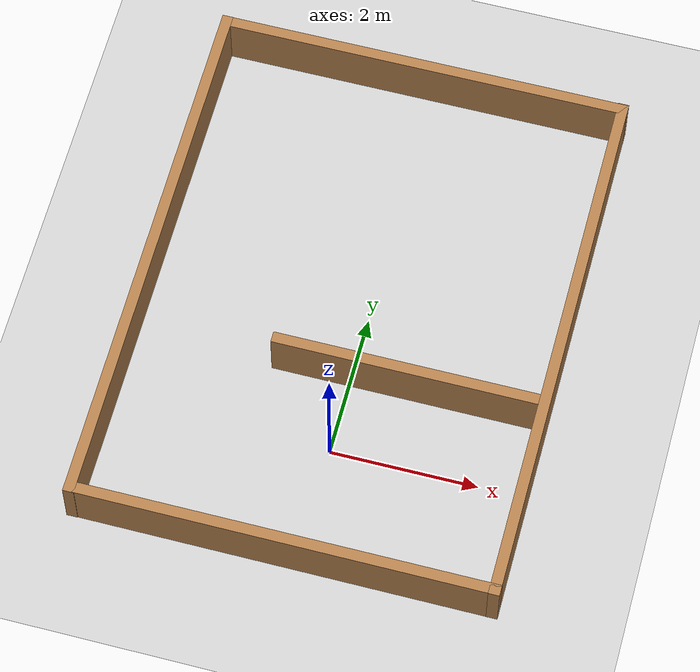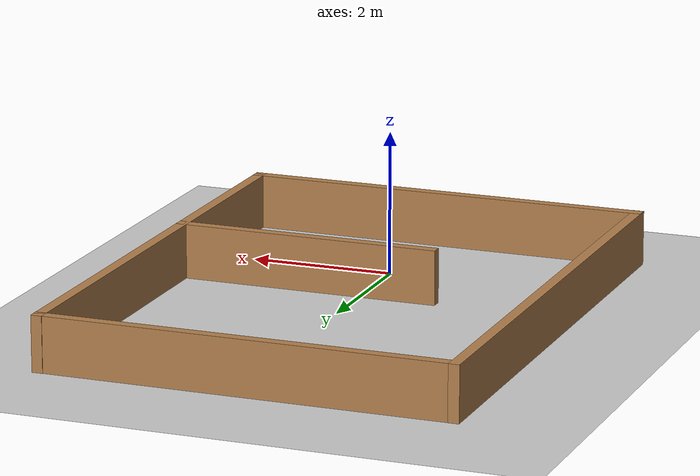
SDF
<sdf version="1.6">
 <world name="default">
  <light name="sun" type="directional">
   <pose>0 0 10 0 -0 0</pose>
   <diffuse>0.8 0.8 0.8 1</diffuse>
   <specular>0.2 0.2 0.2 1</specular>
   <attenuation>
    <range>1000</range>
    <constant>0.9</constant>
    <linear>0.01</linear>
    <quadratic>0.001</quadratic>
   </attenuation>
   <direction>0.5 0.1 -0.9</direction>
  </light>
  <scene><ambient>0.4 0.4 0.4 1</ambient><background>0.7 0.7 0.7 1</background><shadows>1</shadows></scene>
  <physics name="default_physics" default="0" type="ode">
   <max_step_size>0.01</max_step_size>
   <real_time_factor>1</real_time_factor>
   <real_time_update_rate>100</real_time_update_rate>
  </physics>
  <gravity>0 0 -9.8</gravity>
  <magnetic_field>6e-06 2.3e-05 -4.2e-05</magnetic_field>
  <atmosphere type="adiabatic"/>
  <spherical_coordinates>
   <surface_model>EARTH_WGS84</surface_model>
   <latitude_deg>0</latitude_deg>
   <longitude_deg>0</longitude_deg>
   <elevation>0</elevation>
   <heading_deg>0</heading_deg>
  </spherical_coordinates>
  <model name="ground_plane">
   <static>1</static>
   <link name="link">
    <collision name="collision">
     <geometry><plane><normal>0 0 1</normal><size>100 100</size></plane></geometry>
     <surface><friction><ode><mu>100</mu><mu2>50</mu2></ode></friction></surface>
    </collision>
    <visual name="visual">
     <cast_shadows>0</cast_shadows>
     <geometry><plane><normal>0 0 1</normal><size>100 100</size></plane></geometry>
     <material>
      <script><uri>file://media/materials/scripts/gazebo.material</uri><name>Gazebo/Grey</name></script>
     </material>
    </visual>
   </link>
   <pose>3.63562 1.30612 0 0 -0 0</pose>
  </model>
  <model name="arn_env1">
   <link name="Wall_10">
    <pose>0.82386 -0.803958 -1 0 -0 0</pose>
    <inertial>
     <mass>1</mass>
     <inertia><ixx>1</ixx><ixy>0</ixy><ixz>0</ixz><iyy>1</iyy><iyz>0</iyz><izz>1</izz></inertia>
    </inertial>
    <visual name="Wall_10_Visual">
     <pose>0 0 1.25 0 -0 0</pose>
     <geometry><box><size>3.75 0.15 1</size></box></geometry>
     <material>
      <script><uri>file://media/materials/scripts/gazebo.material</uri><name>Gazebo/Wood</name></script>
      <ambient>1 1 1 1</ambient>
      <shader type="pixel"><normal_map>__default__</normal_map></shader>
      <diffuse>0.7 0.7 0.7 1</diffuse>
      <specular>0.01 0.01 0.01 1</specular>
      <emissive>0 0 0 1</emissive>
     </material>
     <meta><layer>0</layer></meta>
    </visual>
    <collision name="Wall_10_Collision">
     <pose>0 0 1.25 0 -0 0</pose>
     <geometry><box><size>1.75 0.15 2.5</size></box></geometry>
     <surface>
      <friction>
       <ode><mu>1</mu><mu2>1</mu2><fdir1>0 0 0</fdir1><slip1>0</slip1><slip2>0</slip2></ode>
       <torsional>
        <coefficient>1</coefficient>
        <patch_radius>0</patch_radius>
        <surface_radius>0</surface_radius>
        <use_patch_radius>1</use_patch_radius>
        <ode><slip>0</slip></ode>
       </torsional>
      </friction>
      <bounce><restitution_coefficient>0</restitution_coefficient><threshold>1e+06</threshold></bounce>
      <contact>
       <collide_without_contact>0</collide_without_contact>
       <collide_without_contact_bitmask>1</collide_without_contact_bitmask>
       <collide_bitmask>1</collide_bitmask>
       <ode>
        <soft_cfm>0</soft_cfm>
        <soft_erp>0.2</soft_erp>
        <kp>1e+13</kp>
        <kd>1</kd>
        <max_vel>0.01</max_vel>
        <min_depth>0</min_depth>
       </ode>
       <bullet>
        <split_impulse>1</split_impulse>
        <split_impulse_penetration_threshold>-0.01</split_impulse_penetration_threshold>
        <soft_cfm>0</soft_cfm>
        <soft_erp>0.2</soft_erp>
        <kp>1e+13</kp>
        <kd>1</kd>
       </bullet>
      </contact>
     </surface>
    </collision>
   </link>
   <link name="Wall_4">
    <pose>-0.174556 -3.54686 -1 0 -0 0</pose>
    <inertial>
     <mass>1</mass>
     <inertia><ixx>1</ixx><ixy>0</ixy><ixz>0</ixz><iyy>1</iyy><iyz>0</iyz><izz>1</izz></inertia>
    </inertial>
    <visual name="Wall_4_Visual">
     <pose>0 0 1.25 0 -0 0</pose>
     <geometry><box><size>5.75 0.15 1</size></box></geometry>
     <material>
      <script><uri>file://media/materials/scripts/gazebo.material</uri><name>Gazebo/Wood</name></script>
      <ambient>1 1 1 1</ambient>
      <shader type="pixel"><normal_map>__default__</normal_map></shader>
      <diffuse>0.7 0.7 0.7 1</diffuse>
      <specular>0.01 0.01 0.01 1</specular>
      <emissive>0 0 0 1</emissive>
     </material>
     <meta><layer>0</layer></meta>
    </visual>
    <collision name="Wall_4_Collision">
     <pose>0 0 1.25 0 -0 0</pose>
     <geometry><box><size>5.75 0.15 2.5</size></box></geometry>
     <surface>
      <friction>
       <ode><mu>1</mu><mu2>1</mu2><fdir1>0 0 0</fdir1><slip1>0</slip1><slip2>0</slip2></ode>
       <torsional>
        <coefficient>1</coefficient>
        <patch_radius>0</patch_radius>
        <surface_radius>0</surface_radius>
        <use_patch_radius>1</use_patch_radius>
        <ode><slip>0</slip></ode>
       </torsional>
      </friction>
      <bounce><restitution_coefficient>0</restitution_coefficient><threshold>1e+06</threshold></bounce>
      <contact>
       <collide_without_contact>0</collide_without_contact>
       <collide_without_contact_bitmask>1</collide_without_contact_bitmask>
       <collide_bitmask>1</collide_bitmask>
       <ode>
        <soft_cfm>0</soft_cfm>
        <soft_erp>0.2</soft_erp>
        <kp>1e+13</kp>
        <kd>1</kd>
        <max_vel>0.01</max_vel>
        <min_depth>0</min_depth>
       </ode>
       <bullet>
        <split_impulse>1</split_impulse>
        <split_impulse_penetration_threshold>-0.01</split_impulse_penetration_threshold>
        <soft_cfm>0</soft_cfm>
        <soft_erp>0.2</soft_erp>
        <kp>1e+13</kp>
        <kd>1</kd>
       </bullet>
      </contact>
     </surface>
    </collision>
   </link>
   <link name="Wall_4_clone">
    <pose>-0.172112 3.77995 -1 0 -0 0</pose>
    <inertial>
     <mass>1</mass>
     <inertia><ixx>1</ixx><ixy>0</ixy><ixz>0</ixz><iyy>1</iyy><iyz>0</iyz><izz>1</izz></inertia>
    </inertial>
    <visual name="Wall_4_Visual">
     <pose>0 0 1.25 0 -0 0</pose>
     <geometry><box><size>5.75 0.15 1</size></box></geometry>
     <material>
      <script><uri>file://media/materials/scripts/gazebo.material</uri><name>Gazebo/Wood</name></script>
      <ambient>1 1 1 1</ambient>
      <shader type="pixel"><normal_map>__default__</normal_map></shader>
      <diffuse>0.7 0.7 0.7 1</diffuse>
      <specular>0.01 0.01 0.01 1</specular>
      <emissive>0 0 0 1</emissive>
     </material>
     <meta><layer>0</layer></meta>
    </visual>
    <collision name="Wall_4_Collision">
     <pose>0 0 1.25 0 -0 0</pose>
     <geometry><box><size>5.75 0.15 2.5</size></box></geometry>
     <surface>
      <friction>
       <ode><mu>1</mu><mu2>1</mu2><fdir1>0 0 0</fdir1><slip1>0</slip1><slip2>0</slip2></ode>
       <torsional>
        <coefficient>1</coefficient>
        <patch_radius>0</patch_radius>
        <surface_radius>0</surface_radius>
        <use_patch_radius>1</use_patch_radius>
        <ode><slip>0</slip></ode>
       </torsional>
      </friction>
      <bounce><restitution_coefficient>0</restitution_coefficient><threshold>1e+06</threshold></bounce>
      <contact>
       <collide_without_contact>0</collide_without_contact>
       <collide_without_contact_bitmask>1</collide_without_contact_bitmask>
       <collide_bitmask>1</collide_bitmask>
       <ode>
        <soft_cfm>0</soft_cfm>
        <soft_erp>0.2</soft_erp>
        <kp>1e+13</kp>
        <kd>1</kd>
        <max_vel>0.01</max_vel>
        <min_depth>0</min_depth>
       </ode>
       <bullet>
        <split_impulse>1</split_impulse>
        <split_impulse_penetration_threshold>-0.01</split_impulse_penetration_threshold>
        <soft_cfm>0</soft_cfm>
        <soft_erp>0.2</soft_erp>
        <kp>1e+13</kp>
        <kd>1</kd>
       </bullet>
      </contact>
     </surface>
    </collision>
   </link>
   <link name="Wall_6">
    <pose>-2.97739 0.11496 -1 0 -0 1.57045</pose>
    <inertial>
     <mass>1</mass>
     <inertia><ixx>1</ixx><ixy>0</ixy><ixz>0</ixz><iyy>1</iyy><iyz>0</iyz><izz>1</izz></inertia>
    </inertial>
    <visual name="Wall_6_Visual">
     <pose>0 0 1.25 0 -0 0</pose>
     <geometry><box><size>7.48534 0.15 1</size></box></geometry>
     <material>
      <script><uri>file://media/materials/scripts/gazebo.material</uri><name>Gazebo/Wood</name></script>
      <ambient>1 1 1 1</ambient>
      <shader type="pixel"><normal_map>__default__</normal_map></shader>
      <diffuse>0.7 0.7 0.7 1</diffuse>
      <specular>0.01 0.01 0.01 1</specular>
      <emissive>0 0 0 1</emissive>
     </material>
     <meta><layer>0</layer></meta>
    </visual>
    <collision name="Wall_6_Collision">
     <pose>0 0 1.25 0 -0 0</pose>
     <geometry><box><size>7.48534 0.15 2.5</size></box></geometry>
     <surface>
      <friction>
       <ode><mu>1</mu><mu2>1</mu2><fdir1>0 0 0</fdir1><slip1>0</slip1><slip2>0</slip2></ode>
       <torsional>
        <coefficient>1</coefficient>
        <patch_radius>0</patch_radius>
        <surface_radius>0</surface_radius>
        <use_patch_radius>1</use_patch_radius>
        <ode><slip>0</slip></ode>
       </torsional>
      </friction>
      <bounce><restitution_coefficient>0</restitution_coefficient><threshold>1e+06</threshold></bounce>
      <contact>
       <collide_without_contact>0</collide_without_contact>
       <collide_without_contact_bitmask>1</collide_without_contact_bitmask>
       <collide_bitmask>1</collide_bitmask>
       <ode>
        <soft_cfm>0</soft_cfm>
        <soft_erp>0.2</soft_erp>
        <kp>1e+13</kp>
        <kd>1</kd>
        <max_vel>0.01</max_vel>
        <min_depth>0</min_depth>
       </ode>
       <bullet>
        <split_impulse>1</split_impulse>
        <split_impulse_penetration_threshold>-0.01</split_impulse_penetration_threshold>
        <soft_cfm>0</soft_cfm>
        <soft_erp>0.2</soft_erp>
        <kp>1e+13</kp>
        <kd>1</kd>
       </bullet>
      </contact>
     </surface>
    </collision>
   </link>
   <link name="Wall_6_clone">
    <pose>2.62604 0.119071 -1 0 -0 1.57045</pose>
    <inertial>
     <mass>1</mass>
     <inertia><ixx>1</ixx><ixy>0</ixy><ixz>0</ixz><iyy>1</iyy><iyz>0</iyz><izz>1</izz></inertia>
    </inertial>
    <visual name="Wall_6_Visual">
     <pose>0 0 1.25 0 -0 0</pose>
     <geometry><box><size>7.48534 0.15 1</size></box></geometry>
     <material>
      <script><uri>file://media/materials/scripts/gazebo.material</uri><name>Gazebo/Wood</name></script>
      <ambient>1 1 1 1</ambient>
      <shader type="pixel"><normal_map>__default__</normal_map></shader>
      <diffuse>0.7 0.7 0.7 1</diffuse>
      <specular>0.01 0.01 0.01 1</specular>
      <emissive>0 0 0 1</emissive>
     </material>
     <meta><layer>0</layer></meta>
    </visual>
    <collision name="Wall_6_Collision">
     <pose>0 0 1.25 0 -0 0</pose>
     <geometry><box><size>7.48534 0.15 2.5</size></box></geometry>
     <surface>
      <friction>
       <ode><mu>1</mu><mu2>1</mu2><fdir1>0 0 0</fdir1><slip1>0</slip1><slip2>0</slip2></ode>
       <torsional>
        <coefficient>1</coefficient>
        <patch_radius>0</patch_radius>
        <surface_radius>0</surface_radius>
        <use_patch_radius>1</use_patch_radius>
        <ode><slip>0</slip></ode>
       </torsional>
      </friction>
      <bounce><restitution_coefficient>0</restitution_coefficient><threshold>1e+06</threshold></bounce>
      <contact>
       <collide_without_contact>0</collide_without_contact>
       <collide_without_contact_bitmask>1</collide_without_contact_bitmask>
       <collide_bitmask>1</collide_bitmask>
       <ode>
        <soft_cfm>0</soft_cfm>
        <soft_erp>0.2</soft_erp>
        <kp>1e+13</kp>
        <kd>1</kd>
        <max_vel>0.01</max_vel>
        <min_depth>0</min_depth>
       </ode>
       <bullet>
        <split_impulse>1</split_impulse>
        <split_impulse_penetration_threshold>-0.01</split_impulse_penetration_threshold>
        <soft_cfm>0</soft_cfm>
        <soft_erp>0.2</soft_erp>
        <kp>1e+13</kp>
        <kd>1</kd>
       </bullet>
      </contact>
     </surface>
    </collision>
   </link>
   <static>1</static>
   <pose>-0.02261 1.88504 0 0 -0 0</pose>
  </model>
 </world>
</sdf>
